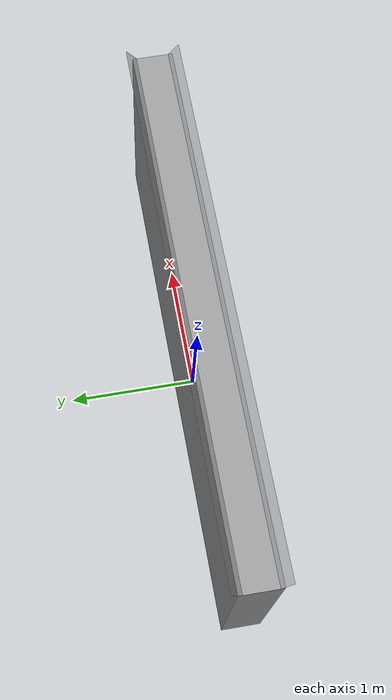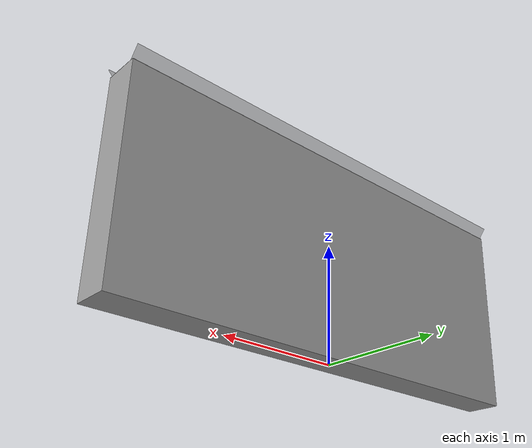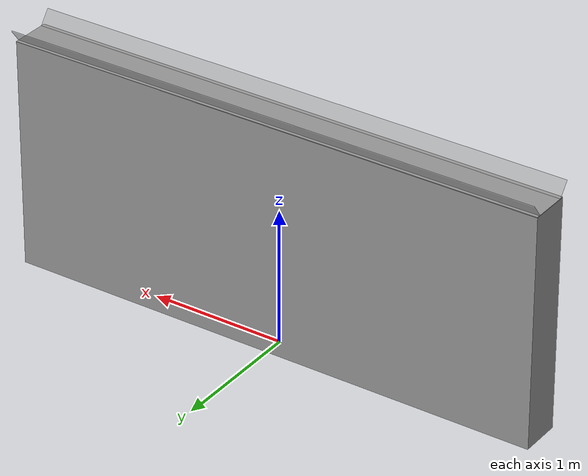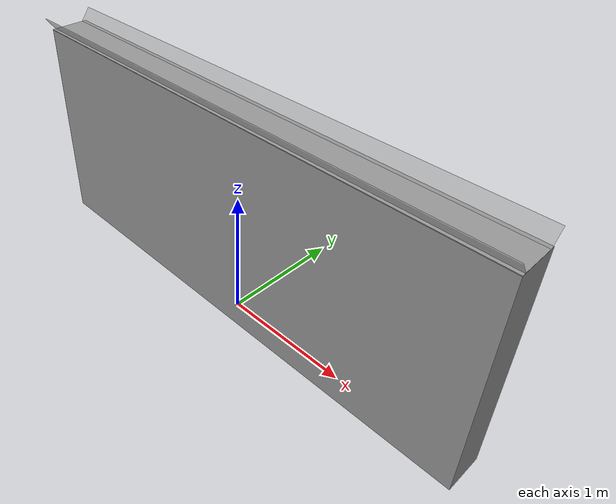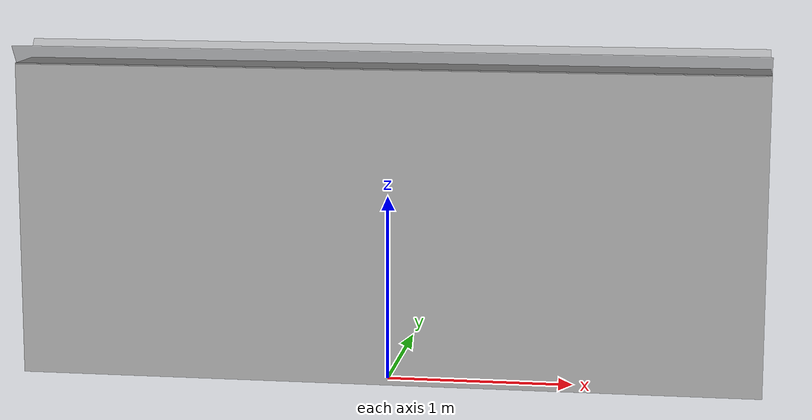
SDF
<?xml version="1.0" ?>
<sdf version="1.5">
  <model name="mbzirc_uav_assembly_wall">
    <static>true</static>
    <link name="link">
      <pose>0 0 0.85 0 0 0</pose>

      <collision name="collision_wall">
        <geometry>
          <box>
            <size>4.0 0.3 1.7</size>
          </box>
        </geometry>
      </collision>

      <visual name="visual_wall">
        <cast_shadows>true</cast_shadows>
        <geometry>
          <box>
            <size>4.0 0.3 1.7</size>
          </box>
        </geometry>
        <material>
          <script>
            <uri>model://mbzirc_uav_assembly_wall/materials/scripts</uri>
            <uri>model://mbzirc_uav_assembly_wall/materials/textures</uri>
            <name>vrc/grey_wall</name>
          </script>
        </material>
      </visual>

      <visual name="visual_top_plate">
        <pose>0 00 0.85 0 0 0</pose>
        <geometry>
          <box>
            <size>4.0 0.3 0.005</size>
          </box>
        </geometry>
        <material>
          <script>
            <name>Gazebo/Grey</name>
            <uri>file://media/materials/scripts/gazebo.material</uri>
          </script>
        </material>
      </visual>

      <collision name="collision_front_channel">
        <pose>0 0.158 0.9 -0.643 0 0</pose>
        <geometry>
          <box>
            <size>4.0 0.005 0.125</size>
          </box>
        </geometry>
      </collision>

      <visual name="visual_front_channel">
        <pose>0 0.158 0.9 -0.643 0 0</pose>
        <geometry>
          <box>
            <size>4.0 0.005 0.125</size>
          </box>
        </geometry>
        <material>
          <script>
            <name>Gazebo/GreyTransparent</name>
            <uri>file://media/materials/scripts/gazebo.material</uri>
          </script>
        </material>
      </visual>

      <collision name="collision_back_channel">
        <pose>0 -0.158 0.9 0.643 0 0</pose>
        <geometry>
          <box>
            <size>4.0 0.005 0.125</size>
          </box>
        </geometry>
      </collision>

      <visual name="visual_back_channel">
        <pose>0 -0.158 0.9 0.643 0 0</pose>
        <geometry>
          <box>
            <size>4.0 0.005 0.125</size>
          </box>
        </geometry>
        <material>
          <script>
            <name>Gazebo/GreyTransparent</name>
            <uri>file://media/materials/scripts/gazebo.material</uri>
          </script>
        </material>
      </visual>

    </link>
  </model>
</sdf>
